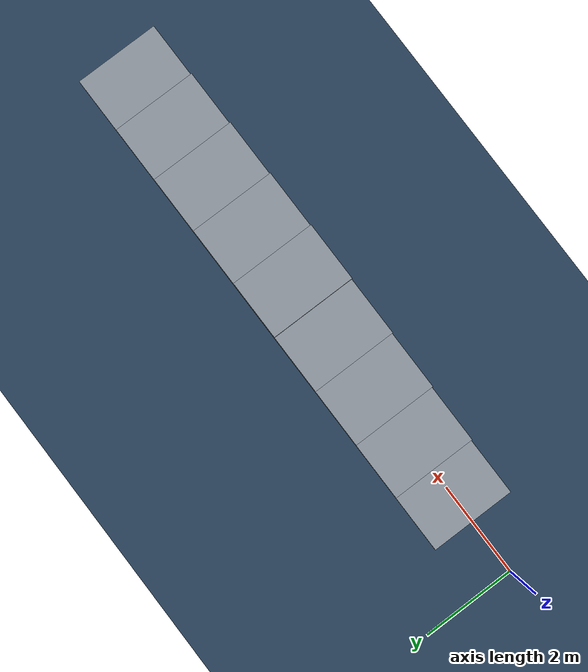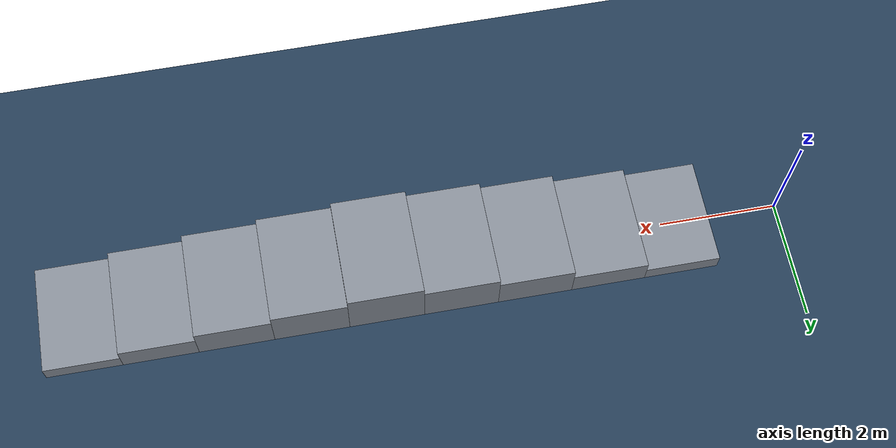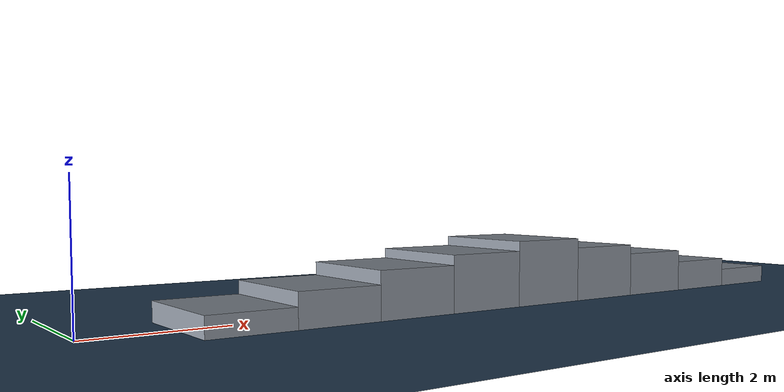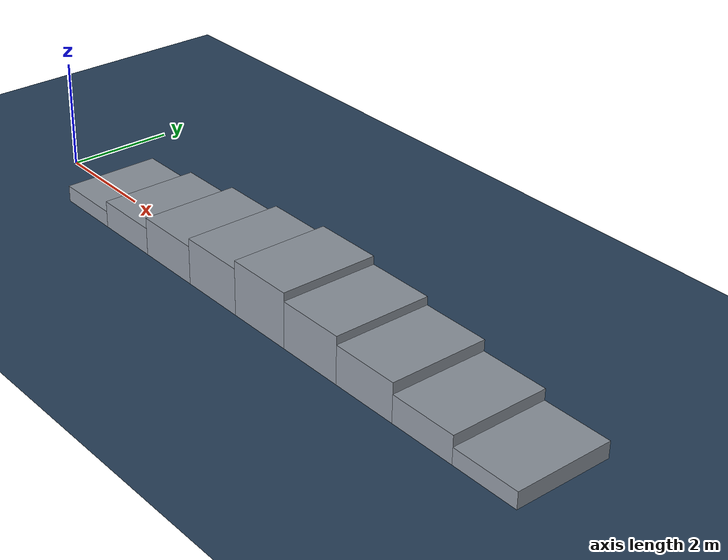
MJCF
<?xml version="1.0" encoding="utf-8"?>
<mujoco model="map_high_platforms">
  <statistic center="3 0 0.3" extent="1.2" />
  <visual>
    <headlight diffuse="0.6 0.6 0.6" ambient="0.3 0.3 0.3" specular="0 0 0" />
    <rgba haze="0.15 0.25 0.35 1" />
    <global azimuth="135" elevation="-25" />
    <quality shadowsize="4096" />
  </visual>
<asset>
    <texture type="skybox" builtin="gradient" rgb1="0.3 0.5 0.7" rgb2="0 0 0" width="512" height="3072" />
    <texture type="2d" name="groundplane" builtin="checker" mark="edge" rgb1="0.2 0.3 0.4" rgb2="0.1 0.2 0.3" markrgb="0.8 0.8 0.8" width="300" height="300" />
    <material name="groundplane" texture="groundplane" texuniform="true" texrepeat="5 5" reflectance="0.2" />
<material name="terrain" rgba="0.55 0.58 0.62 1" reflectance="0.05" />
  </asset>
  <worldbody>
    <light pos="0 0 3" dir="0 0 -1" directional="true" castshadow="true" />
<geom name="floor" size="0 0 0.05" type="plane" material="groundplane" />

    <geom name="platform_030cm_up_0" type="box" pos="1.87500 0.00000 0.15000" size="0.62500 0.90000 0.15000" quat="1.000000 0.000000 0.000000 0.000000" material="terrain" />

    <geom name="platform_050cm_up_1" type="box" pos="3.12500 0.00000 0.25000" size="0.62500 0.90000 0.25000" quat="1.000000 0.000000 0.000000 0.000000" material="terrain" />

    <geom name="platform_070cm_up_2" type="box" pos="4.37500 0.00000 0.35000" size="0.62500 0.90000 0.35000" quat="1.000000 0.000000 0.000000 0.000000" material="terrain" />

    <geom name="platform_085cm_up_3" type="box" pos="5.62500 0.00000 0.42500" size="0.62500 0.90000 0.42500" quat="1.000000 0.000000 0.000000 0.000000" material="terrain" />

    <geom name="platform_100cm_up_4" type="box" pos="6.87500 0.00000 0.50000" size="0.62500 0.90000 0.50000" quat="1.000000 0.000000 0.000000 0.000000" material="terrain" />

    <geom name="platform_085cm_down_0" type="box" pos="8.12500 0.00000 0.42500" size="0.62500 0.90000 0.42500" quat="1.000000 0.000000 0.000000 0.000000" material="terrain" />
    <geom name="platform_070cm_down_1" type="box" pos="9.37500 0.00000 0.35000" size="0.62500 0.90000 0.35000" quat="1.000000 0.000000 0.000000 0.000000" material="terrain" />
    <geom name="platform_050cm_down_2" type="box" pos="10.62500 0.00000 0.25000" size="0.62500 0.90000 0.25000" quat="1.000000 0.000000 0.000000 0.000000" material="terrain" />
    <geom name="platform_030cm_down_3" type="box" pos="11.87500 0.00000 0.15000" size="0.62500 0.90000 0.15000" quat="1.000000 0.000000 0.000000 0.000000" material="terrain" />
  </worldbody>
</mujoco>
